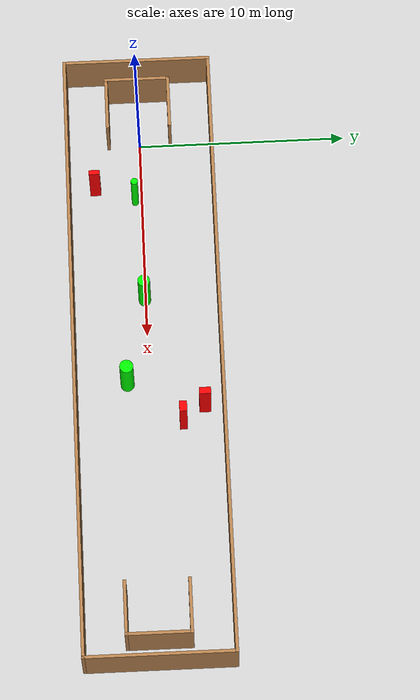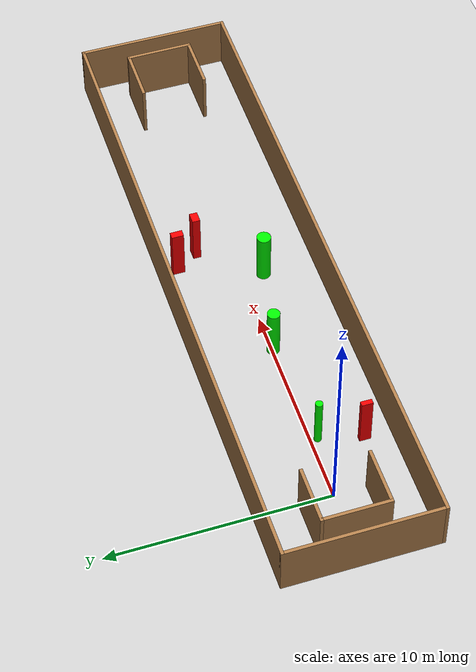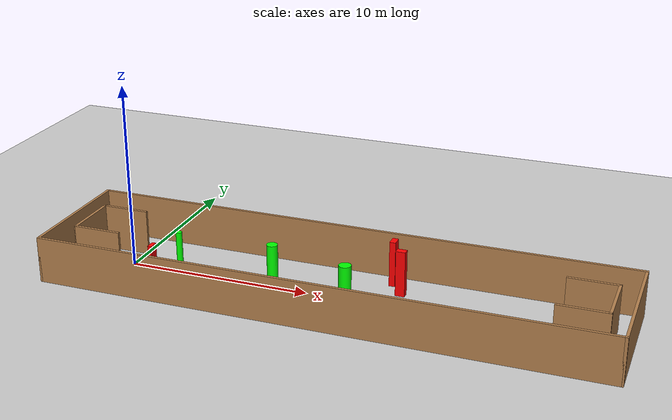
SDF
<sdf version="1.7">
 <world name="default">
  <light name="sun" type="directional">
   <pose>0 0 10 0 -0 0</pose>
   <diffuse>0.8 0.8 0.8 1</diffuse>
   <specular>0.2 0.2 0.2 1</specular>
   <attenuation>
    <range>1000</range>
    <constant>0.9</constant>
    <linear>0.01</linear>
    <quadratic>0.001</quadratic>
   </attenuation>
   <direction>-0.5 0.1 -0.9</direction>
   <spot><inner_angle>0</inner_angle><outer_angle>0</outer_angle><falloff>0</falloff></spot>
  </light>
  <model name="ground_plane">
   <static>1</static>
   <link name="link">
    <collision name="collision">
     <geometry><plane><normal>0 0 1</normal><size>100 100</size></plane></geometry>
     <surface>
      <contact><collide_bitmask>65535</collide_bitmask></contact>
      <friction><ode><mu>100</mu><mu2>50</mu2></ode></friction>
     </surface>
    </collision>
    <visual name="visual">
     <cast_shadows>0</cast_shadows>
     <geometry><plane><normal>0 0 1</normal><size>100 100</size></plane></geometry>
     <material>
      <script><uri>file://media/materials/scripts/gazebo.material</uri><name>Gazebo/Grey</name></script>
     </material>
    </visual>
   </link>
  </model>
  <gravity>0 0 -9.8</gravity>
  <magnetic_field>6e-06 2.3e-05 -4.2e-05</magnetic_field>
  <atmosphere type="adiabatic"/>
  <physics type="ode">
   <max_step_size>0.001</max_step_size>
   <real_time_factor>1</real_time_factor>
   <real_time_update_rate>1000</real_time_update_rate>
  </physics>
  <scene><ambient>0.4 0.4 0.4 1</ambient><background>0.7 0.7 0.7 1</background><shadows>1</shadows></scene>
  <spherical_coordinates>
   <surface_model>EARTH_WGS84</surface_model>
   <latitude_deg>0</latitude_deg>
   <longitude_deg>0</longitude_deg>
   <elevation>0</elevation>
   <heading_deg>0</heading_deg>
  </spherical_coordinates>
  <model name="my_base_walls">
   <link name="Wall_0">
    <collision name="Wall_0_Collision">
     <geometry><box><size>7.15 0.15 2.5</size></box></geometry>
     <pose>0 0 1.25 0 -0 0</pose>
    </collision>
    <visual name="Wall_0_Visual">
     <pose>0 0 1.25 0 -0 0</pose>
     <geometry><box><size>7.15 0.15 2.5</size></box></geometry>
     <material>
      <script><uri>file://media/materials/scripts/gazebo.material</uri><name>Gazebo/Wood</name></script>
      <ambient>1 1 1 1</ambient>
     </material>
     <meta><layer>0</layer></meta>
    </visual>
    <pose>-15 0 0 0 -0 1.5708</pose>
   </link>
   <link name="Wall_10">
    <collision name="Wall_10_Collision">
     <geometry><box><size>2.65 0.15 2.5</size></box></geometry>
     <pose>0 0 1.25 0 -0 0</pose>
    </collision>
    <visual name="Wall_10_Visual">
     <pose>0 0 1.25 0 -0 0</pose>
     <geometry><box><size>2.65 0.15 2.5</size></box></geometry>
     <material>
      <script><uri>file://media/materials/scripts/gazebo.material</uri><name>Gazebo/Wood</name></script>
      <ambient>1 1 1 1</ambient>
     </material>
     <meta><layer>0</layer></meta>
    </visual>
    <pose>-12.75 -1.5 0 0 -0 0</pose>
   </link>
   <link name="Wall_12">
    <collision name="Wall_12_Collision">
     <geometry><box><size>2.65 0.15 2.5</size></box></geometry>
     <pose>0 0 1.25 0 -0 0</pose>
    </collision>
    <visual name="Wall_12_Visual">
     <pose>0 0 1.25 0 -0 0</pose>
     <geometry><box><size>2.65 0.15 2.5</size></box></geometry>
     <material>
      <script><uri>file://media/materials/scripts/gazebo.material</uri><name>Gazebo/Wood</name></script>
      <ambient>1 1 1 1</ambient>
     </material>
     <meta><layer>0</layer></meta>
    </visual>
    <pose>-12.75 1.5 0 0 -0 0</pose>
   </link>
   <link name="Wall_14">
    <collision name="Wall_14_Collision">
     <geometry><box><size>3.15 0.15 2.5</size></box></geometry>
     <pose>0 0 1.25 0 -0 0</pose>
    </collision>
    <visual name="Wall_14_Visual">
     <pose>0 0 1.25 0 -0 0</pose>
     <geometry><box><size>3.15 0.15 2.5</size></box></geometry>
     <material>
      <script><uri>file://media/materials/scripts/gazebo.material</uri><name>Gazebo/Wood</name></script>
      <ambient>1 1 1 1</ambient>
     </material>
     <meta><layer>0</layer></meta>
    </visual>
    <pose>14 0 0 0 -0 -1.5708</pose>
   </link>
   <link name="Wall_15">
    <collision name="Wall_15_Collision">
     <geometry><box><size>2.65 0.15 2.5</size></box></geometry>
     <pose>0 0 1.25 0 -0 0</pose>
    </collision>
    <visual name="Wall_15_Visual">
     <pose>0 0 1.25 0 -0 0</pose>
     <geometry><box><size>2.65 0.15 2.5</size></box></geometry>
     <material>
      <script><uri>file://media/materials/scripts/gazebo.material</uri><name>Gazebo/Wood</name></script>
      <ambient>1 1 1 1</ambient>
     </material>
     <meta><layer>0</layer></meta>
    </visual>
    <pose>12.75 -1.5 0 0 -0 3.14159</pose>
   </link>
   <link name="Wall_17">
    <collision name="Wall_17_Collision">
     <geometry><box><size>2.65 0.15 2.5</size></box></geometry>
     <pose>0 0 1.25 0 -0 0</pose>
    </collision>
    <visual name="Wall_17_Visual">
     <pose>0 0 1.25 0 -0 0</pose>
     <geometry><box><size>2.65 0.15 2.5</size></box></geometry>
     <material>
      <script><uri>file://media/materials/scripts/gazebo.material</uri><name>Gazebo/Wood</name></script>
      <ambient>1 1 1 1</ambient>
     </material>
     <meta><layer>0</layer></meta>
    </visual>
    <pose>12.75 1.5 0 0 -0 3.14159</pose>
   </link>
   <link name="Wall_2">
    <collision name="Wall_2_Collision">
     <geometry><box><size>30.15 0.15 2.5</size></box></geometry>
     <pose>0 0 1.25 0 -0 0</pose>
    </collision>
    <visual name="Wall_2_Visual">
     <pose>0 0 1.25 0 -0 0</pose>
     <geometry><box><size>30.15 0.15 2.5</size></box></geometry>
     <material>
      <script><uri>file://media/materials/scripts/gazebo.material</uri><name>Gazebo/Wood</name></script>
      <ambient>1 1 1 1</ambient>
     </material>
     <meta><layer>0</layer></meta>
    </visual>
    <pose>-0 -3.5 0 0 -0 0</pose>
   </link>
   <link name="Wall_4">
    <collision name="Wall_4_Collision">
     <geometry><box><size>30.15 0.15 2.5</size></box></geometry>
     <pose>0 0 1.25 0 -0 0</pose>
    </collision>
    <visual name="Wall_4_Visual">
     <pose>0 0 1.25 0 -0 0</pose>
     <geometry><box><size>30.15 0.15 2.5</size></box></geometry>
     <material>
      <script><uri>file://media/materials/scripts/gazebo.material</uri><name>Gazebo/Wood</name></script>
      <ambient>1 1 1 1</ambient>
     </material>
     <meta><layer>0</layer></meta>
    </visual>
    <pose>-0 3.5 0 0 -0 0</pose>
   </link>
   <link name="Wall_6">
    <collision name="Wall_6_Collision">
     <geometry><box><size>7.15 0.15 2.5</size></box></geometry>
     <pose>0 0 1.25 0 -0 0</pose>
    </collision>
    <visual name="Wall_6_Visual">
     <pose>0 0 1.25 0 -0 0</pose>
     <geometry><box><size>7.15 0.15 2.5</size></box></geometry>
     <material>
      <script><uri>file://media/materials/scripts/gazebo.material</uri><name>Gazebo/Wood</name></script>
      <ambient>1 1 1 1</ambient>
     </material>
     <meta><layer>0</layer></meta>
    </visual>
    <pose>15 0 0 0 -0 -1.5708</pose>
   </link>
   <link name="Wall_9">
    <collision name="Wall_9_Collision">
     <geometry><box><size>3.15 0.15 2.5</size></box></geometry>
     <pose>0 0 1.25 0 -0 0</pose>
    </collision>
    <visual name="Wall_9_Visual">
     <pose>0 0 1.25 0 -0 0</pose>
     <geometry><box><size>3.15 0.15 2.5</size></box></geometry>
     <material>
      <script><uri>file://media/materials/scripts/gazebo.material</uri><name>Gazebo/Wood</name></script>
      <ambient>1 1 1 1</ambient>
     </material>
     <meta><layer>0</layer></meta>
    </visual>
    <pose>-14 0 0 0 -0 -1.5708</pose>
   </link>
   <static>1</static>
   <pose>11.5 0 0 0 -0 0</pose>
  </model>
  <model name="cylinder1">
   <static>1</static>
   <link name="link">
    <inertial>
     <mass>1</mass>
     <inertia><ixx>0.5</ixx><ixy>0</ixy><ixz>0</ixz><iyy>0.5</iyy><iyz>0</iyz><izz>1</izz></inertia>
    </inertial>
    <collision name="collision">
     <geometry><cylinder><radius>0.1655090333325633</radius><length>2.5</length></cylinder></geometry>
    </collision>
    <visual name="visual">
     <geometry><cylinder><radius>0.1655090333325633</radius><length>2.5</length></cylinder></geometry>
     <material>
      <ambient>0 1 0 1</ambient>
      <diffuse>0 1 0 1</diffuse>
      <specular>0.1 0.1 0.1 1</specular>
      <emissive>0 0 0 0</emissive>
     </material>
    </visual>
   </link>
   <pose>2.9683861201485655 -0.3169854391093354 1.25 0 0 0</pose>
  </model>
  <model name="cylinder2">
   <static>1</static>
   <link name="link">
    <inertial>
     <mass>1</mass>
     <inertia><ixx>0.5</ixx><ixy>0</ixy><ixz>0</ixz><iyy>0.5</iyy><iyz>0</iyz><izz>1</izz></inertia>
    </inertial>
    <collision name="collision">
     <geometry><cylinder><radius>0.2909341198263932</radius><length>2.5</length></cylinder></geometry>
    </collision>
    <visual name="visual">
     <geometry><cylinder><radius>0.2909341198263932</radius><length>2.5</length></cylinder></geometry>
     <material>
      <ambient>0 1 0 1</ambient>
      <diffuse>0 1 0 1</diffuse>
      <specular>0.1 0.1 0.1 1</specular>
      <emissive>0 0 0 0</emissive>
     </material>
    </visual>
   </link>
   <pose>8.155353930389362 -0.05313012839029785 1.25 0 0 0</pose>
  </model>
  <model name="cylinder3">
   <static>1</static>
   <link name="link">
    <inertial>
     <mass>1</mass>
     <inertia><ixx>0.5</ixx><ixy>0</ixy><ixz>0</ixz><iyy>0.5</iyy><iyz>0</iyz><izz>1</izz></inertia>
    </inertial>
    <collision name="collision">
     <geometry><cylinder><radius>0.32405286650254045</radius><length>2.5</length></cylinder></geometry>
    </collision>
    <visual name="visual">
     <geometry><cylinder><radius>0.32405286650254045</radius><length>2.5</length></cylinder></geometry>
     <material>
      <ambient>0 1 0 1</ambient>
      <diffuse>0 1 0 1</diffuse>
      <specular>0.1 0.1 0.1 1</specular>
      <emissive>0 0 0 0</emissive>
     </material>
    </visual>
   </link>
   <pose>12.475998850065833 -1.0358588151574688 1.25 0 0 0</pose>
  </model>
  <model name="box1">
   <static>1</static>
   <link name="link">
    <inertial>
     <mass>1</mass>
     <inertia><ixx>0.083</ixx><ixy>0</ixy><ixz>0</ixz><iyy>0.083</iyy><iyz>0</iyz><izz>0.083</izz></inertia>
    </inertial>
    <collision name="collision">
     <geometry><box><size>0.22172003296805395 0.5129660851731777 2.5</size></box></geometry>
    </collision>
    <visual name="visual">
     <geometry><box><size>0.22172003296805395 0.5129660851731777 2.5</size></box></geometry>
     <material>
      <ambient>1 0 0 1</ambient>
      <diffuse>1 0 0 1</diffuse>
      <specular>0.1 0.1 0.1 1</specular>
      <emissive>0 0 0 0</emissive>
     </material>
    </visual>
    <sensor name="my_contact" type="contact">
     <contact><collision>box_collision</collision><topic>__default_topic__</topic></contact>
    </sensor>
   </link>
   <pose>2.408981031044485 -2.2231752914424803 1.25 0 0 0</pose>
  </model>
  <model name="box2">
   <static>1</static>
   <link name="link">
    <inertial>
     <mass>1</mass>
     <inertia><ixx>0.083</ixx><ixy>0</ixy><ixz>0</ixz><iyy>0.083</iyy><iyz>0</iyz><izz>0.083</izz></inertia>
    </inertial>
    <collision name="collision">
     <geometry><box><size>0.32316459237729744 0.5529724421019763 2.5</size></box></geometry>
    </collision>
    <visual name="visual">
     <geometry><box><size>0.32316459237729744 0.5529724421019763 2.5</size></box></geometry>
     <material>
      <ambient>1 0 0 1</ambient>
      <diffuse>1 0 0 1</diffuse>
      <specular>0.1 0.1 0.1 1</specular>
      <emissive>0 0 0 0</emissive>
     </material>
    </visual>
    <sensor name="my_contact" type="contact">
     <contact><collision>box_collision</collision><topic>__default_topic__</topic></contact>
    </sensor>
   </link>
   <pose>13.848010579848019 2.6020308894734923 1.25 0 0 0</pose>
  </model>
  <model name="box3">
   <static>1</static>
   <link name="link">
    <inertial>
     <mass>1</mass>
     <inertia><ixx>0.083</ixx><ixy>0</ixy><ixz>0</ixz><iyy>0.083</iyy><iyz>0</iyz><izz>0.083</izz></inertia>
    </inertial>
    <collision name="collision">
     <geometry><box><size>0.5063994619803263 0.3581200146700251 2.5</size></box></geometry>
    </collision>
    <visual name="visual">
     <geometry><box><size>0.5063994619803263 0.3581200146700251 2.5</size></box></geometry>
     <material>
      <ambient>1 0 0 1</ambient>
      <diffuse>1 0 0 1</diffuse>
      <specular>0.1 0.1 0.1 1</specular>
      <emissive>0 0 0 0</emissive>
     </material>
    </visual>
    <sensor name="my_contact" type="contact">
     <contact><collision>box_collision</collision><topic>__default_topic__</topic></contact>
    </sensor>
   </link>
   <pose>14.57836033831213 1.5463806189257783 1.25 0 0 0</pose>
  </model>
 </world>
</sdf>
